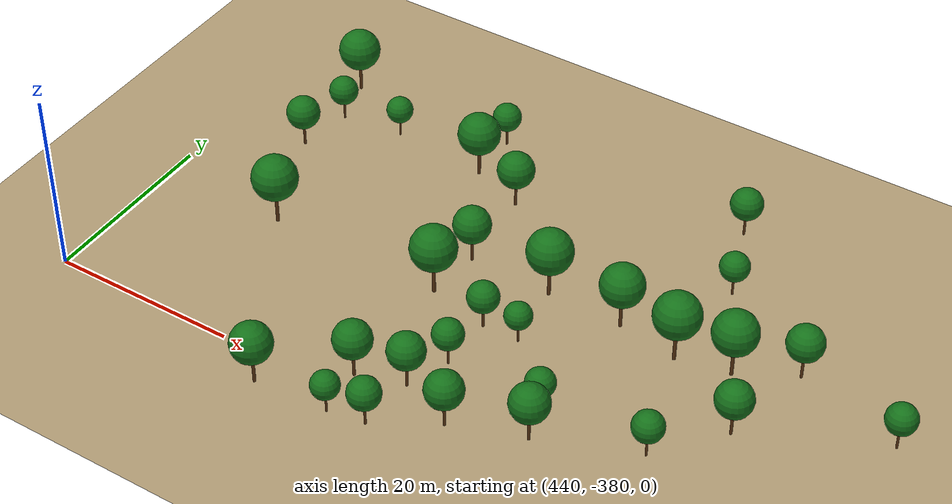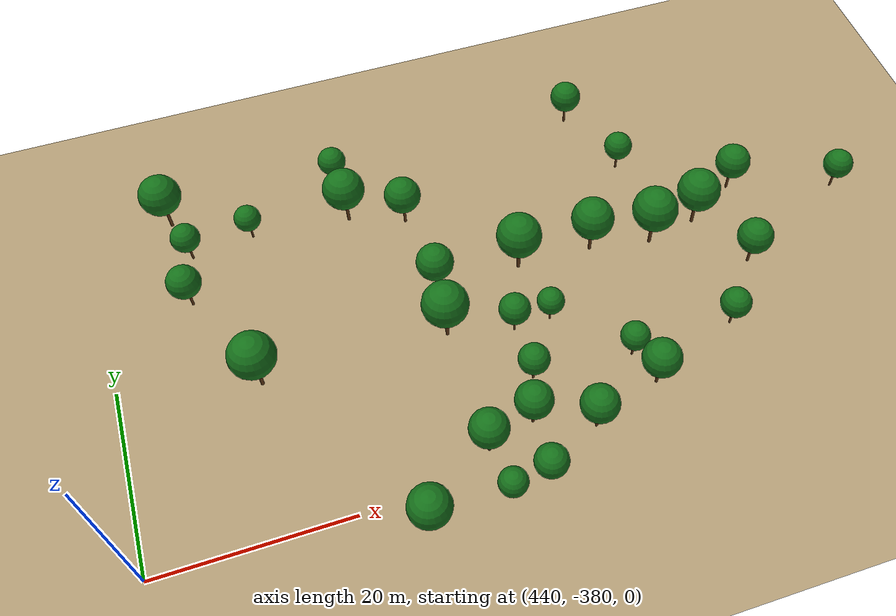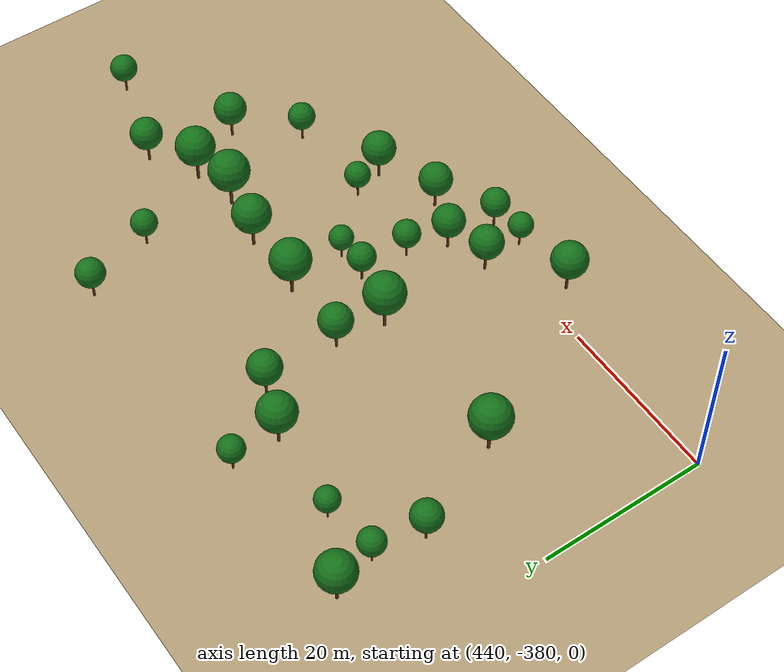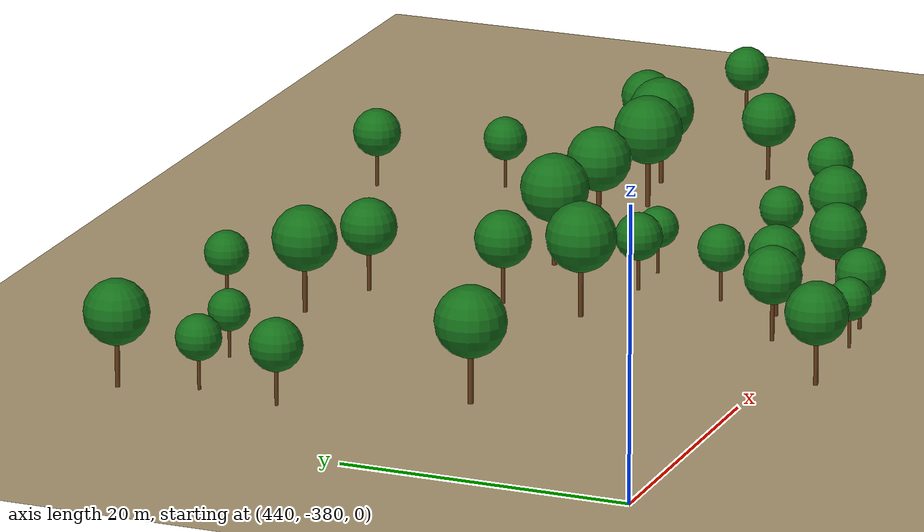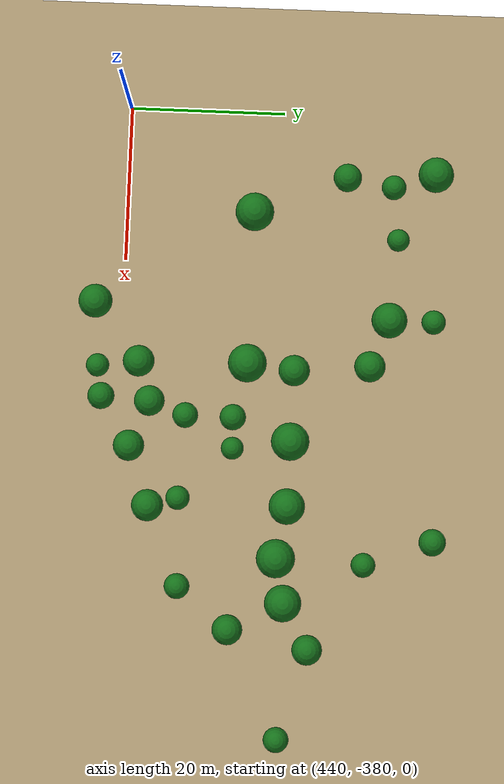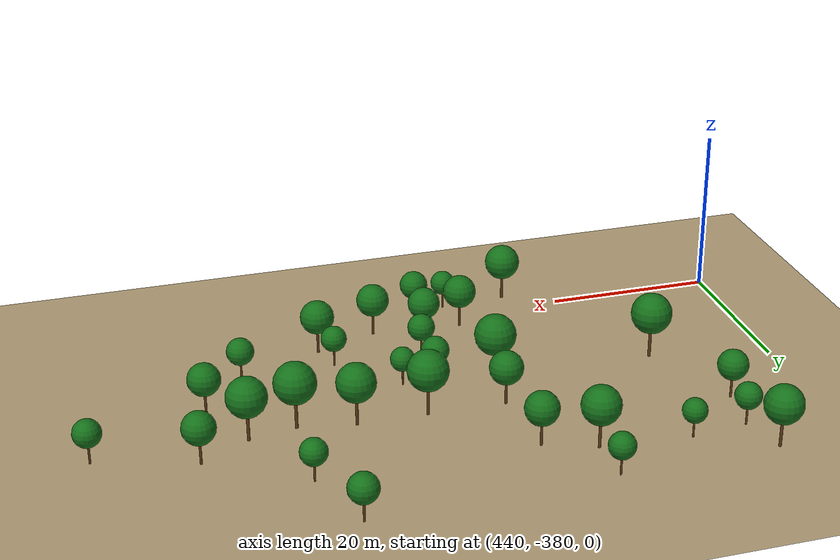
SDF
<sdf version="1.9">
 <world name="crossroad_world">
  <model name="ground_plane">
   <static>true</static>
   <pose>0 0 -0.05 0 0 0</pose>
   <link name="link">
    <collision name="collision">
     <geometry><plane><normal>0 0 1</normal><size>10000 10000</size></plane></geometry>
    </collision>
    <visual name="visual">
     <geometry><plane><normal>0 0 1</normal><size>15000 15000</size></plane></geometry>
     <material><ambient>0.68 0.60 0.45 1</ambient><diffuse>0.68 0.60 0.45 1</diffuse></material>
    </visual>
   </link>
  </model>
  <model name="tree_41">
   <static>true</static>
   <pose>498.008 -359.101 0 0 0 0</pose>
   <link name="link">
    <visual name="trunk">
     <pose>0 0 2.059 0 0 0</pose>
     <geometry><cylinder><radius>0.180</radius><length>4.119</length></cylinder></geometry>
     <material><ambient>0.38 0.22 0.08 1</ambient><diffuse>0.38 0.22 0.08 1</diffuse></material>
    </visual>
    <visual name="canopy">
     <pose>0 0 5.708 0 0 0</pose>
     <geometry><sphere><radius>2.446</radius></sphere></geometry>
     <material><ambient>0.08 0.44 0.10 1</ambient><diffuse>0.08 0.44 0.10 1</diffuse></material>
    </visual>
    <collision name="col">
     <pose>0 0 2.059 0 0 0</pose>
     <geometry><cylinder><radius>0.180</radius><length>4.119</length></cylinder></geometry>
    </collision>
   </link>
  </model>
  <model name="tree_42">
   <static>true</static>
   <pose>484.382 -378.244 0 0 0 0</pose>
   <link name="link">
    <visual name="trunk">
     <pose>0 0 1.662 0 0 0</pose>
     <geometry><cylinder><radius>0.145</radius><length>3.323</length></cylinder></geometry>
     <material><ambient>0.38 0.22 0.08 1</ambient><diffuse>0.38 0.22 0.08 1</diffuse></material>
    </visual>
    <visual name="canopy">
     <pose>0 0 4.606 0 0 0</pose>
     <geometry><sphere><radius>1.973</radius></sphere></geometry>
     <material><ambient>0.08 0.44 0.10 1</ambient><diffuse>0.08 0.44 0.10 1</diffuse></material>
    </visual>
    <collision name="col">
     <pose>0 0 1.662 0 0 0</pose>
     <geometry><cylinder><radius>0.145</radius><length>3.323</length></cylinder></geometry>
    </collision>
   </link>
  </model>
  <model name="tree_43">
   <static>true</static>
   <pose>495.250 -339.347 0 0 0 0</pose>
   <link name="link">
    <visual name="trunk">
     <pose>0 0 1.449 0 0 0</pose>
     <geometry><cylinder><radius>0.127</radius><length>2.898</length></cylinder></geometry>
     <material><ambient>0.38 0.22 0.08 1</ambient><diffuse>0.38 0.22 0.08 1</diffuse></material>
    </visual>
    <visual name="canopy">
     <pose>0 0 4.017 0 0 0</pose>
     <geometry><sphere><radius>1.721</radius></sphere></geometry>
     <material><ambient>0.08 0.44 0.10 1</ambient><diffuse>0.08 0.44 0.10 1</diffuse></material>
    </visual>
    <collision name="col">
     <pose>0 0 1.449 0 0 0</pose>
     <geometry><cylinder><radius>0.127</radius><length>2.898</length></cylinder></geometry>
    </collision>
   </link>
  </model>
  <model name="tree_44">
   <static>true</static>
   <pose>490.760 -371.811 0 0 0 0</pose>
   <link name="link">
    <visual name="trunk">
     <pose>0 0 1.288 0 0 0</pose>
     <geometry><cylinder><radius>0.113</radius><length>2.577</length></cylinder></geometry>
     <material><ambient>0.38 0.22 0.08 1</ambient><diffuse>0.38 0.22 0.08 1</diffuse></material>
    </visual>
    <visual name="canopy">
     <pose>0 0 3.571 0 0 0</pose>
     <geometry><sphere><radius>1.530</radius></sphere></geometry>
     <material><ambient>0.08 0.44 0.10 1</ambient><diffuse>0.08 0.44 0.10 1</diffuse></material>
    </visual>
    <collision name="col">
     <pose>0 0 1.288 0 0 0</pose>
     <geometry><cylinder><radius>0.113</radius><length>2.577</length></cylinder></geometry>
    </collision>
   </link>
  </model>
  <model name="tree_45">
   <static>true</static>
   <pose>480.214 -371.257 0 0 0 0</pose>
   <link name="link">
    <visual name="trunk">
     <pose>0 0 1.371 0 0 0</pose>
     <geometry><cylinder><radius>0.120</radius><length>2.742</length></cylinder></geometry>
     <material><ambient>0.38 0.22 0.08 1</ambient><diffuse>0.38 0.22 0.08 1</diffuse></material>
    </visual>
    <visual name="canopy">
     <pose>0 0 3.800 0 0 0</pose>
     <geometry><sphere><radius>1.628</radius></sphere></geometry>
     <material><ambient>0.08 0.44 0.10 1</ambient><diffuse>0.08 0.44 0.10 1</diffuse></material>
    </visual>
    <collision name="col">
     <pose>0 0 1.371 0 0 0</pose>
     <geometry><cylinder><radius>0.120</radius><length>2.742</length></cylinder></geometry>
    </collision>
   </link>
  </model>
  <model name="tree_46">
   <static>true</static>
   <pose>480.267 -365.188 0 0 0 0</pose>
   <link name="link">
    <visual name="trunk">
     <pose>0 0 1.400 0 0 0</pose>
     <geometry><cylinder><radius>0.123</radius><length>2.800</length></cylinder></geometry>
     <material><ambient>0.38 0.22 0.08 1</ambient><diffuse>0.38 0.22 0.08 1</diffuse></material>
    </visual>
    <visual name="canopy">
     <pose>0 0 3.881 0 0 0</pose>
     <geometry><sphere><radius>1.663</radius></sphere></geometry>
     <material><ambient>0.08 0.44 0.10 1</ambient><diffuse>0.08 0.44 0.10 1</diffuse></material>
    </visual>
    <collision name="col">
     <pose>0 0 1.400 0 0 0</pose>
     <geometry><cylinder><radius>0.123</radius><length>2.800</length></cylinder></geometry>
    </collision>
   </link>
  </model>
  <model name="tree_47">
   <static>true</static>
   <pose>520.717 -358.231 0 0 0 0</pose>
   <link name="link">
    <visual name="trunk">
     <pose>0 0 1.358 0 0 0</pose>
     <geometry><cylinder><radius>0.119</radius><length>2.716</length></cylinder></geometry>
     <material><ambient>0.38 0.22 0.08 1</ambient><diffuse>0.38 0.22 0.08 1</diffuse></material>
    </visual>
    <visual name="canopy">
     <pose>0 0 3.764 0 0 0</pose>
     <geometry><sphere><radius>1.613</radius></sphere></geometry>
     <material><ambient>0.08 0.44 0.10 1</ambient><diffuse>0.08 0.44 0.10 1</diffuse></material>
    </visual>
    <collision name="col">
     <pose>0 0 1.358 0 0 0</pose>
     <geometry><cylinder><radius>0.119</radius><length>2.716</length></cylinder></geometry>
    </collision>
   </link>
  </model>
  <model name="tree_48">
   <static>true</static>
   <pose>484.194 -365.116 0 0 0 0</pose>
   <link name="link">
    <visual name="trunk">
     <pose>0 0 1.212 0 0 0</pose>
     <geometry><cylinder><radius>0.106</radius><length>2.425</length></cylinder></geometry>
     <material><ambient>0.38 0.22 0.08 1</ambient><diffuse>0.38 0.22 0.08 1</diffuse></material>
    </visual>
    <visual name="canopy">
     <pose>0 0 3.361 0 0 0</pose>
     <geometry><sphere><radius>1.440</radius></sphere></geometry>
     <material><ambient>0.08 0.44 0.10 1</ambient><diffuse>0.08 0.44 0.10 1</diffuse></material>
    </visual>
    <collision name="col">
     <pose>0 0 1.212 0 0 0</pose>
     <geometry><cylinder><radius>0.106</radius><length>2.425</length></cylinder></geometry>
    </collision>
   </link>
  </model>
  <model name="tree_49">
   <static>true</static>
   <pose>474.100 -357.606 0 0 0 0</pose>
   <link name="link">
    <visual name="trunk">
     <pose>0 0 1.670 0 0 0</pose>
     <geometry><cylinder><radius>0.146</radius><length>3.340</length></cylinder></geometry>
     <material><ambient>0.38 0.22 0.08 1</ambient><diffuse>0.38 0.22 0.08 1</diffuse></material>
    </visual>
    <visual name="canopy">
     <pose>0 0 4.629 0 0 0</pose>
     <geometry><sphere><radius>1.983</radius></sphere></geometry>
     <material><ambient>0.08 0.44 0.10 1</ambient><diffuse>0.08 0.44 0.10 1</diffuse></material>
    </visual>
    <collision name="col">
     <pose>0 0 1.670 0 0 0</pose>
     <geometry><cylinder><radius>0.146</radius><length>3.340</length></cylinder></geometry>
    </collision>
   </link>
  </model>
  <model name="tree_50">
   <static>true</static>
   <pose>478.145 -382.075 0 0 0 0</pose>
   <link name="link">
    <visual name="trunk">
     <pose>0 0 1.441 0 0 0</pose>
     <geometry><cylinder><radius>0.126</radius><length>2.883</length></cylinder></geometry>
     <material><ambient>0.38 0.22 0.08 1</ambient><diffuse>0.38 0.22 0.08 1</diffuse></material>
    </visual>
    <visual name="canopy">
     <pose>0 0 3.995 0 0 0</pose>
     <geometry><sphere><radius>1.712</radius></sphere></geometry>
     <material><ambient>0.08 0.44 0.10 1</ambient><diffuse>0.08 0.44 0.10 1</diffuse></material>
    </visual>
    <collision name="col">
     <pose>0 0 1.441 0 0 0</pose>
     <geometry><cylinder><radius>0.126</radius><length>2.883</length></cylinder></geometry>
    </collision>
   </link>
  </model>
  <model name="tree_51">
   <static>true</static>
   <pose>473.478 -363.580 0 0 0 0</pose>
   <link name="link">
    <visual name="trunk">
     <pose>0 0 2.057 0 0 0</pose>
     <geometry><cylinder><radius>0.180</radius><length>4.115</length></cylinder></geometry>
     <material><ambient>0.38 0.22 0.08 1</ambient><diffuse>0.38 0.22 0.08 1</diffuse></material>
    </visual>
    <visual name="canopy">
     <pose>0 0 5.703 0 0 0</pose>
     <geometry><sphere><radius>2.443</radius></sphere></geometry>
     <material><ambient>0.08 0.44 0.10 1</ambient><diffuse>0.08 0.44 0.10 1</diffuse></material>
    </visual>
    <collision name="col">
     <pose>0 0 2.057 0 0 0</pose>
     <geometry><cylinder><radius>0.180</radius><length>4.115</length></cylinder></geometry>
    </collision>
   </link>
  </model>
  <model name="tree_52">
   <static>true</static>
   <pose>473.589 -377.411 0 0 0 0</pose>
   <link name="link">
    <visual name="trunk">
     <pose>0 0 1.687 0 0 0</pose>
     <geometry><cylinder><radius>0.148</radius><length>3.374</length></cylinder></geometry>
     <material><ambient>0.38 0.22 0.08 1</ambient><diffuse>0.38 0.22 0.08 1</diffuse></material>
    </visual>
    <visual name="canopy">
     <pose>0 0 4.676 0 0 0</pose>
     <geometry><sphere><radius>2.003</radius></sphere></geometry>
     <material><ambient>0.08 0.44 0.10 1</ambient><diffuse>0.08 0.44 0.10 1</diffuse></material>
    </visual>
    <collision name="col">
     <pose>0 0 1.687 0 0 0</pose>
     <geometry><cylinder><radius>0.148</radius><length>3.374</length></cylinder></geometry>
    </collision>
   </link>
  </model>
  <model name="tree_53">
   <static>true</static>
   <pose>466.163 -383.203 0 0 0 0</pose>
   <link name="link">
    <visual name="trunk">
     <pose>0 0 1.814 0 0 0</pose>
     <geometry><cylinder><radius>0.159</radius><length>3.627</length></cylinder></geometry>
     <material><ambient>0.38 0.22 0.08 1</ambient><diffuse>0.38 0.22 0.08 1</diffuse></material>
    </visual>
    <visual name="canopy">
     <pose>0 0 5.027 0 0 0</pose>
     <geometry><sphere><radius>2.154</radius></sphere></geometry>
     <material><ambient>0.08 0.44 0.10 1</ambient><diffuse>0.08 0.44 0.10 1</diffuse></material>
    </visual>
    <collision name="col">
     <pose>0 0 1.814 0 0 0</pose>
     <geometry><cylinder><radius>0.159</radius><length>3.627</length></cylinder></geometry>
    </collision>
   </link>
  </model>
  <model name="tree_54">
   <static>true</static>
   <pose>498.430 -347.986 0 0 0 0</pose>
   <link name="link">
    <visual name="trunk">
     <pose>0 0 1.311 0 0 0</pose>
     <geometry><cylinder><radius>0.115</radius><length>2.622</length></cylinder></geometry>
     <material><ambient>0.38 0.22 0.08 1</ambient><diffuse>0.38 0.22 0.08 1</diffuse></material>
    </visual>
    <visual name="canopy">
     <pose>0 0 3.634 0 0 0</pose>
     <geometry><sphere><radius>1.557</radius></sphere></geometry>
     <material><ambient>0.08 0.44 0.10 1</ambient><diffuse>0.08 0.44 0.10 1</diffuse></material>
    </visual>
    <collision name="col">
     <pose>0 0 1.311 0 0 0</pose>
     <geometry><cylinder><radius>0.115</radius><length>2.622</length></cylinder></geometry>
    </collision>
   </link>
  </model>
  <model name="tree_56">
   <static>true</static>
   <pose>478.596 -375.860 0 0 0 0</pose>
   <link name="link">
    <visual name="trunk">
     <pose>0 0 1.632 0 0 0</pose>
     <geometry><cylinder><radius>0.143</radius><length>3.264</length></cylinder></geometry>
     <material><ambient>0.38 0.22 0.08 1</ambient><diffuse>0.38 0.22 0.08 1</diffuse></material>
    </visual>
    <visual name="canopy">
     <pose>0 0 4.524 0 0 0</pose>
     <geometry><sphere><radius>1.938</radius></sphere></geometry>
     <material><ambient>0.08 0.44 0.10 1</ambient><diffuse>0.08 0.44 0.10 1</diffuse></material>
    </visual>
    <collision name="col">
     <pose>0 0 1.632 0 0 0</pose>
     <geometry><cylinder><radius>0.143</radius><length>3.264</length></cylinder></geometry>
    </collision>
   </link>
  </model>
  <model name="tree_57">
   <static>true</static>
   <pose>503.589 -357.994 0 0 0 0</pose>
   <link name="link">
    <visual name="trunk">
     <pose>0 0 1.968 0 0 0</pose>
     <geometry><cylinder><radius>0.172</radius><length>3.936</length></cylinder></geometry>
     <material><ambient>0.38 0.22 0.08 1</ambient><diffuse>0.38 0.22 0.08 1</diffuse></material>
    </visual>
    <visual name="canopy">
     <pose>0 0 5.455 0 0 0</pose>
     <geometry><sphere><radius>2.337</radius></sphere></geometry>
     <material><ambient>0.08 0.44 0.10 1</ambient><diffuse>0.08 0.44 0.10 1</diffuse></material>
    </visual>
    <collision name="col">
     <pose>0 0 1.968 0 0 0</pose>
     <geometry><cylinder><radius>0.172</radius><length>3.936</length></cylinder></geometry>
    </collision>
   </link>
  </model>
  <model name="tree_58">
   <static>true</static>
   <pose>491.882 -375.562 0 0 0 0</pose>
   <link name="link">
    <visual name="trunk">
     <pose>0 0 1.705 0 0 0</pose>
     <geometry><cylinder><radius>0.149</radius><length>3.410</length></cylinder></geometry>
     <material><ambient>0.38 0.22 0.08 1</ambient><diffuse>0.38 0.22 0.08 1</diffuse></material>
    </visual>
    <visual name="canopy">
     <pose>0 0 4.727 0 0 0</pose>
     <geometry><sphere><radius>2.025</radius></sphere></geometry>
     <material><ambient>0.08 0.44 0.10 1</ambient><diffuse>0.08 0.44 0.10 1</diffuse></material>
    </visual>
    <collision name="col">
     <pose>0 0 1.705 0 0 0</pose>
     <geometry><cylinder><radius>0.149</radius><length>3.410</length></cylinder></geometry>
    </collision>
   </link>
  </model>
  <model name="tree_59">
   <static>true</static>
   <pose>509.334 -354.748 0 0 0 0</pose>
   <link name="link">
    <visual name="trunk">
     <pose>0 0 1.613 0 0 0</pose>
     <geometry><cylinder><radius>0.141</radius><length>3.226</length></cylinder></geometry>
     <material><ambient>0.38 0.22 0.08 1</ambient><diffuse>0.38 0.22 0.08 1</diffuse></material>
    </visual>
    <visual name="canopy">
     <pose>0 0 4.471 0 0 0</pose>
     <geometry><sphere><radius>1.916</radius></sphere></geometry>
     <material><ambient>0.08 0.44 0.10 1</ambient><diffuse>0.08 0.44 0.10 1</diffuse></material>
    </visual>
    <collision name="col">
     <pose>0 0 1.613 0 0 0</pose>
     <geometry><cylinder><radius>0.141</radius><length>3.226</length></cylinder></geometry>
    </collision>
   </link>
  </model>
  <model name="tree_61">
   <static>true</static>
   <pose>501.925 -371.466 0 0 0 0</pose>
   <link name="link">
    <visual name="trunk">
     <pose>0 0 1.362 0 0 0</pose>
     <geometry><cylinder><radius>0.119</radius><length>2.724</length></cylinder></geometry>
     <material><ambient>0.38 0.22 0.08 1</ambient><diffuse>0.38 0.22 0.08 1</diffuse></material>
    </visual>
    <visual name="canopy">
     <pose>0 0 3.776 0 0 0</pose>
     <geometry><sphere><radius>1.618</radius></sphere></geometry>
     <material><ambient>0.08 0.44 0.10 1</ambient><diffuse>0.08 0.44 0.10 1</diffuse></material>
    </visual>
    <collision name="col">
     <pose>0 0 1.362 0 0 0</pose>
     <geometry><cylinder><radius>0.119</radius><length>2.724</length></cylinder></geometry>
    </collision>
   </link>
  </model>
  <model name="tree_62">
   <static>true</static>
   <pose>474.193 -382.721 0 0 0 0</pose>
   <link name="link">
    <visual name="trunk">
     <pose>0 0 1.245 0 0 0</pose>
     <geometry><cylinder><radius>0.109</radius><length>2.490</length></cylinder></geometry>
     <material><ambient>0.38 0.22 0.08 1</ambient><diffuse>0.38 0.22 0.08 1</diffuse></material>
    </visual>
    <visual name="canopy">
     <pose>0 0 3.452 0 0 0</pose>
     <geometry><sphere><radius>1.479</radius></sphere></geometry>
     <material><ambient>0.08 0.44 0.10 1</ambient><diffuse>0.08 0.44 0.10 1</diffuse></material>
    </visual>
    <collision name="col">
     <pose>0 0 1.245 0 0 0</pose>
     <geometry><cylinder><radius>0.109</radius><length>2.490</length></cylinder></geometry>
    </collision>
   </link>
  </model>
  <model name="tree_63">
   <static>true</static>
   <pose>483.227 -357.795 0 0 0 0</pose>
   <link name="link">
    <visual name="trunk">
     <pose>0 0 2.028 0 0 0</pose>
     <geometry><cylinder><radius>0.177</radius><length>4.056</length></cylinder></geometry>
     <material><ambient>0.38 0.22 0.08 1</ambient><diffuse>0.38 0.22 0.08 1</diffuse></material>
    </visual>
    <visual name="canopy">
     <pose>0 0 5.622 0 0 0</pose>
     <geometry><sphere><radius>2.408</radius></sphere></geometry>
     <material><ambient>0.08 0.44 0.10 1</ambient><diffuse>0.08 0.44 0.10 1</diffuse></material>
    </visual>
    <collision name="col">
     <pose>0 0 2.028 0 0 0</pose>
     <geometry><cylinder><radius>0.177</radius><length>4.056</length></cylinder></geometry>
    </collision>
   </link>
  </model>
  <model name="tree_64">
   <static>true</static>
   <pose>507.151 -364.876 0 0 0 0</pose>
   <link name="link">
    <visual name="trunk">
     <pose>0 0 1.620 0 0 0</pose>
     <geometry><cylinder><radius>0.142</radius><length>3.241</length></cylinder></geometry>
     <material><ambient>0.38 0.22 0.08 1</ambient><diffuse>0.38 0.22 0.08 1</diffuse></material>
    </visual>
    <visual name="canopy">
     <pose>0 0 4.492 0 0 0</pose>
     <geometry><sphere><radius>1.924</radius></sphere></geometry>
     <material><ambient>0.08 0.44 0.10 1</ambient><diffuse>0.08 0.44 0.10 1</diffuse></material>
    </visual>
    <collision name="col">
     <pose>0 0 1.620 0 0 0</pose>
     <geometry><cylinder><radius>0.142</radius><length>3.241</length></cylinder></geometry>
    </collision>
   </link>
  </model>
  <model name="tree_65">
   <static>true</static>
   <pose>491.411 -357.920 0 0 0 0</pose>
   <link name="link">
    <visual name="trunk">
     <pose>0 0 1.923 0 0 0</pose>
     <geometry><cylinder><radius>0.168</radius><length>3.847</length></cylinder></geometry>
     <material><ambient>0.38 0.22 0.08 1</ambient><diffuse>0.38 0.22 0.08 1</diffuse></material>
    </visual>
    <visual name="canopy">
     <pose>0 0 5.332 0 0 0</pose>
     <geometry><sphere><radius>2.284</radius></sphere></geometry>
     <material><ambient>0.08 0.44 0.10 1</ambient><diffuse>0.08 0.44 0.10 1</diffuse></material>
    </visual>
    <collision name="col">
     <pose>0 0 1.923 0 0 0</pose>
     <geometry><cylinder><radius>0.168</radius><length>3.847</length></cylinder></geometry>
    </collision>
   </link>
  </model>
  <model name="tree_66">
   <static>true</static>
   <pose>473.247 -348.007 0 0 0 0</pose>
   <link name="link">
    <visual name="trunk">
     <pose>0 0 1.667 0 0 0</pose>
     <geometry><cylinder><radius>0.146</radius><length>3.334</length></cylinder></geometry>
     <material><ambient>0.38 0.22 0.08 1</ambient><diffuse>0.38 0.22 0.08 1</diffuse></material>
    </visual>
    <visual name="canopy">
     <pose>0 0 4.621 0 0 0</pose>
     <geometry><sphere><radius>1.980</radius></sphere></geometry>
     <material><ambient>0.08 0.44 0.10 1</ambient><diffuse>0.08 0.44 0.10 1</diffuse></material>
    </visual>
    <collision name="col">
     <pose>0 0 1.667 0 0 0</pose>
     <geometry><cylinder><radius>0.146</radius><length>3.334</length></cylinder></geometry>
    </collision>
   </link>
  </model>
  <model name="tree_72">
   <static>true</static>
   <pose>467.330 -345.761 0 0 0 0</pose>
   <link name="link">
    <visual name="trunk">
     <pose>0 0 1.910 0 0 0</pose>
     <geometry><cylinder><radius>0.167</radius><length>3.819</length></cylinder></geometry>
     <material><ambient>0.38 0.22 0.08 1</ambient><diffuse>0.38 0.22 0.08 1</diffuse></material>
    </visual>
    <visual name="canopy">
     <pose>0 0 5.293 0 0 0</pose>
     <geometry><sphere><radius>2.268</radius></sphere></geometry>
     <material><ambient>0.08 0.44 0.10 1</ambient><diffuse>0.08 0.44 0.10 1</diffuse></material>
    </visual>
    <collision name="col">
     <pose>0 0 1.910 0 0 0</pose>
     <geometry><cylinder><radius>0.167</radius><length>3.819</length></cylinder></geometry>
    </collision>
   </link>
  </model>
  <model name="tree_75">
   <static>true</static>
   <pose>467.161 -340.005 0 0 0 0</pose>
   <link name="link">
    <visual name="trunk">
     <pose>0 0 1.301 0 0 0</pose>
     <geometry><cylinder><radius>0.114</radius><length>2.603</length></cylinder></geometry>
     <material><ambient>0.38 0.22 0.08 1</ambient><diffuse>0.38 0.22 0.08 1</diffuse></material>
    </visual>
    <visual name="canopy">
     <pose>0 0 3.607 0 0 0</pose>
     <geometry><sphere><radius>1.545</radius></sphere></geometry>
     <material><ambient>0.08 0.44 0.10 1</ambient><diffuse>0.08 0.44 0.10 1</diffuse></material>
    </visual>
    <collision name="col">
     <pose>0 0 1.301 0 0 0</pose>
     <geometry><cylinder><radius>0.114</radius><length>2.603</length></cylinder></geometry>
    </collision>
   </link>
  </model>
  <model name="tree_77">
   <static>true</static>
   <pose>449.936 -345.626 0 0 0 0</pose>
   <link name="link">
    <visual name="trunk">
     <pose>0 0 1.324 0 0 0</pose>
     <geometry><cylinder><radius>0.116</radius><length>2.648</length></cylinder></geometry>
     <material><ambient>0.38 0.22 0.08 1</ambient><diffuse>0.38 0.22 0.08 1</diffuse></material>
    </visual>
    <visual name="canopy">
     <pose>0 0 3.670 0 0 0</pose>
     <geometry><sphere><radius>1.572</radius></sphere></geometry>
     <material><ambient>0.08 0.44 0.10 1</ambient><diffuse>0.08 0.44 0.10 1</diffuse></material>
    </visual>
    <collision name="col">
     <pose>0 0 1.324 0 0 0</pose>
     <geometry><cylinder><radius>0.116</radius><length>2.648</length></cylinder></geometry>
    </collision>
   </link>
  </model>
  <model name="tree_81">
   <static>true</static>
   <pose>454.107 -363.366 0 0 0 0</pose>
   <link name="link">
    <visual name="trunk">
     <pose>0 0 2.062 0 0 0</pose>
     <geometry><cylinder><radius>0.180</radius><length>4.125</length></cylinder></geometry>
     <material><ambient>0.38 0.22 0.08 1</ambient><diffuse>0.38 0.22 0.08 1</diffuse></material>
    </visual>
    <visual name="canopy">
     <pose>0 0 5.717 0 0 0</pose>
     <geometry><sphere><radius>2.449</radius></sphere></geometry>
     <material><ambient>0.08 0.44 0.10 1</ambient><diffuse>0.08 0.44 0.10 1</diffuse></material>
    </visual>
    <collision name="col">
     <pose>0 0 2.062 0 0 0</pose>
     <geometry><cylinder><radius>0.180</radius><length>4.125</length></cylinder></geometry>
    </collision>
   </link>
  </model>
  <model name="tree_84">
   <static>true</static>
   <pose>448.987 -351.639 0 0 0 0</pose>
   <link name="link">
    <visual name="trunk">
     <pose>0 0 1.522 0 0 0</pose>
     <geometry><cylinder><radius>0.133</radius><length>3.044</length></cylinder></geometry>
     <material><ambient>0.38 0.22 0.08 1</ambient><diffuse>0.38 0.22 0.08 1</diffuse></material>
    </visual>
    <visual name="canopy">
     <pose>0 0 4.218 0 0 0</pose>
     <geometry><sphere><radius>1.807</radius></sphere></geometry>
     <material><ambient>0.08 0.44 0.10 1</ambient><diffuse>0.08 0.44 0.10 1</diffuse></material>
    </visual>
    <collision name="col">
     <pose>0 0 1.522 0 0 0</pose>
     <geometry><cylinder><radius>0.133</radius><length>3.044</length></cylinder></geometry>
    </collision>
   </link>
  </model>
  <model name="tree_85">
   <static>true</static>
   <pose>448.417 -340.385 0 0 0 0</pose>
   <link name="link">
    <visual name="trunk">
     <pose>0 0 1.896 0 0 0</pose>
     <geometry><cylinder><radius>0.166</radius><length>3.792</length></cylinder></geometry>
     <material><ambient>0.38 0.22 0.08 1</ambient><diffuse>0.38 0.22 0.08 1</diffuse></material>
    </visual>
    <visual name="canopy">
     <pose>0 0 5.255 0 0 0</pose>
     <geometry><sphere><radius>2.251</radius></sphere></geometry>
     <material><ambient>0.08 0.44 0.10 1</ambient><diffuse>0.08 0.44 0.10 1</diffuse></material>
    </visual>
    <collision name="col">
     <pose>0 0 1.896 0 0 0</pose>
     <geometry><cylinder><radius>0.166</radius><length>3.792</length></cylinder></geometry>
    </collision>
   </link>
  </model>
  <model name="tree_86">
   <static>true</static>
   <pose>456.690 -344.833 0 0 0 0</pose>
   <link name="link">
    <visual name="trunk">
     <pose>0 0 1.212 0 0 0</pose>
     <geometry><cylinder><radius>0.106</radius><length>2.424</length></cylinder></geometry>
     <material><ambient>0.38 0.22 0.08 1</ambient><diffuse>0.38 0.22 0.08 1</diffuse></material>
    </visual>
    <visual name="canopy">
     <pose>0 0 3.360 0 0 0</pose>
     <geometry><sphere><radius>1.440</radius></sphere></geometry>
     <material><ambient>0.08 0.44 0.10 1</ambient><diffuse>0.08 0.44 0.10 1</diffuse></material>
    </visual>
    <collision name="col">
     <pose>0 0 1.212 0 0 0</pose>
     <geometry><cylinder><radius>0.106</radius><length>2.424</length></cylinder></geometry>
    </collision>
   </link>
  </model>
 </world>
</sdf>
